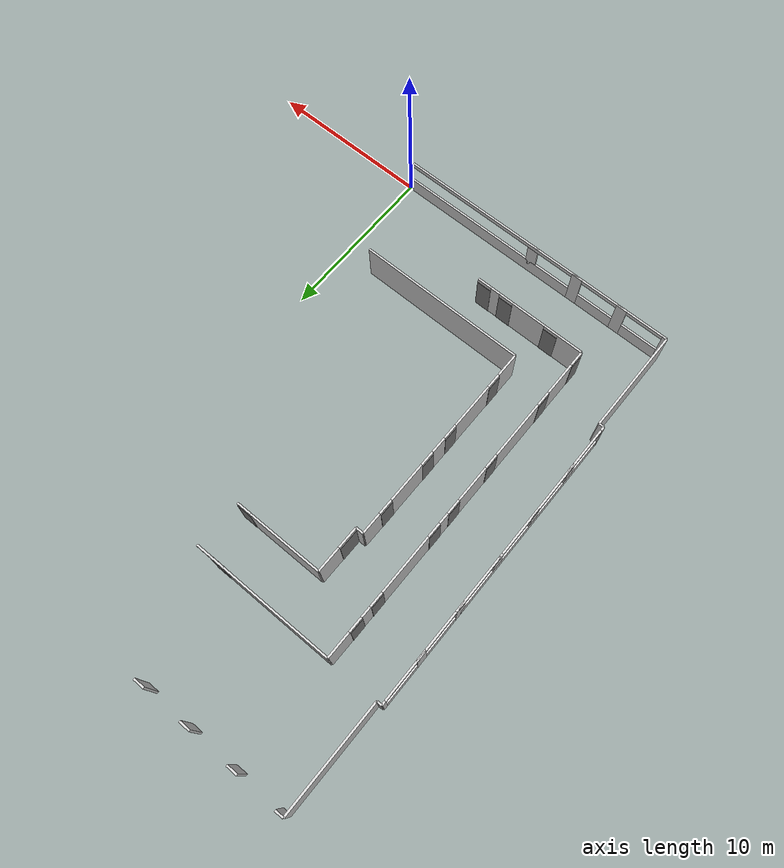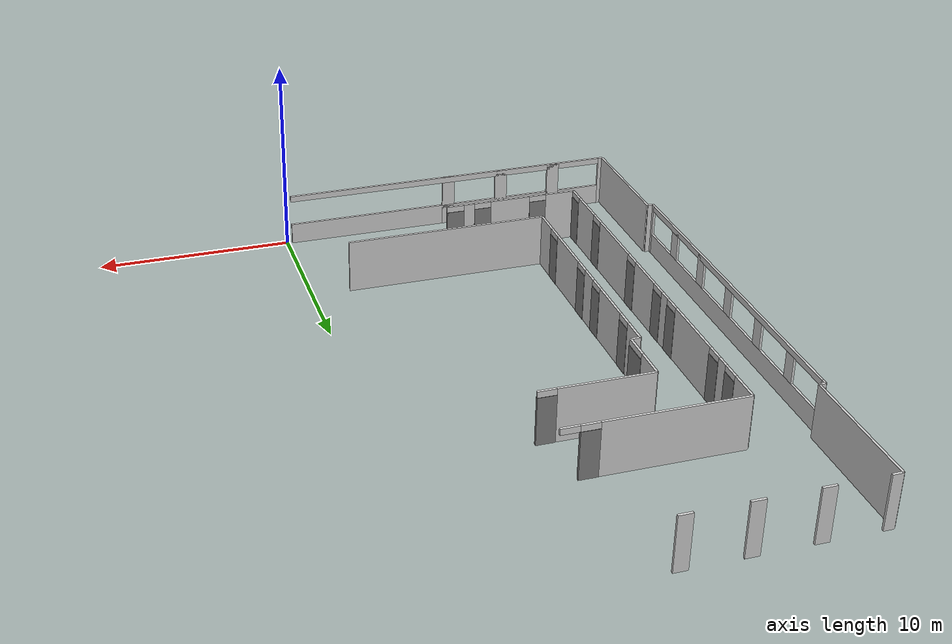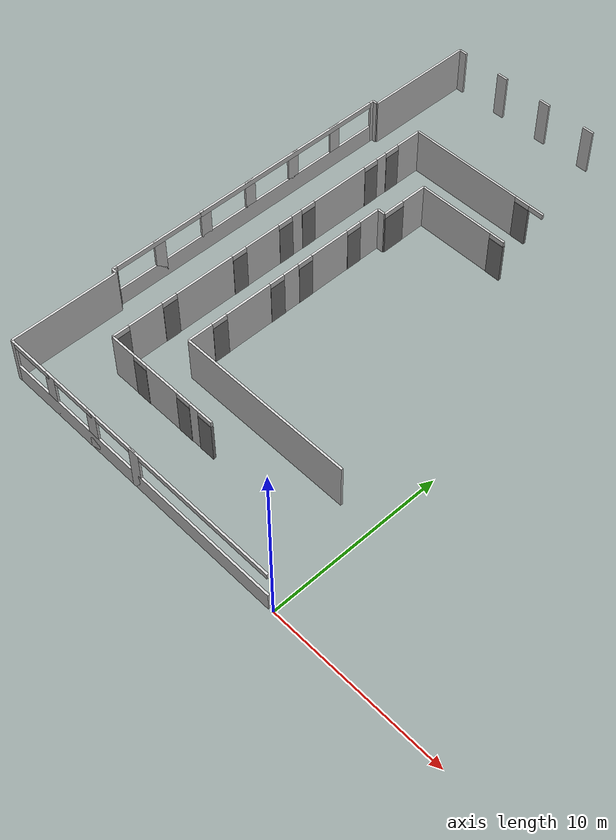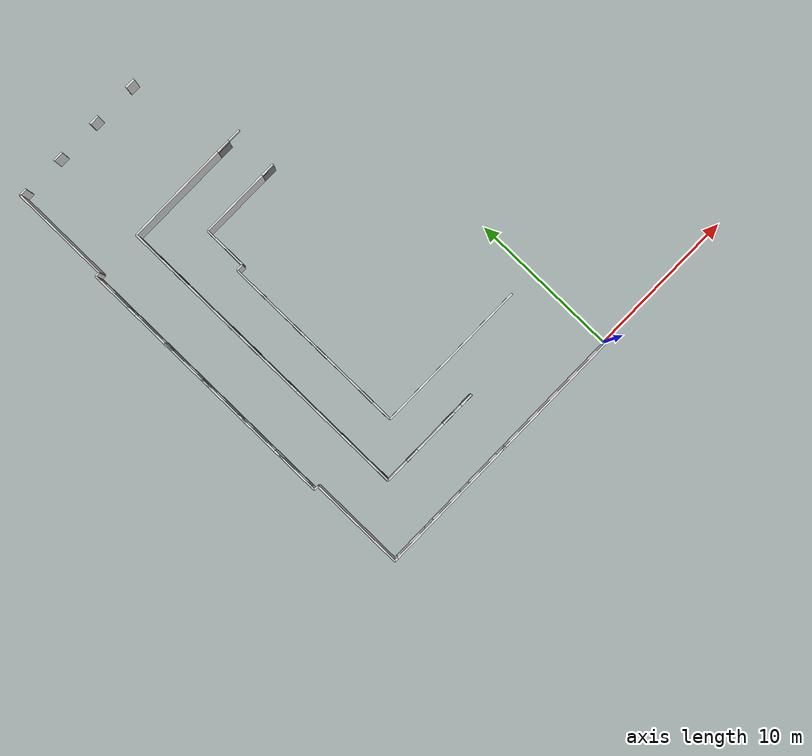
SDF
<sdf version="1.10">
 <model name="fourth_floor">
  <static>true</static>
  <link name="exteriors_002_windows_block_lower_strip">
   <pose>-9.0583 0.0000 0.5461 0 0 3.141593</pose>
   <collision name="exteriors_002_windows_block_lower_strip_collision">
    <geometry><box><size>17.6086 0.1199 1.0922</size></box></geometry>
   </collision>
   <visual name="exteriors_002_windows_block_lower_strip_visual">
    <geometry><box><size>17.6086 0.1199 1.0922</size></box></geometry>
    <material><ambient>0.82 0.82 0.82 1</ambient><diffuse>0.82 0.82 0.82 1</diffuse></material>
   </visual>
  </link>
  <link name="exteriors_002_windows_block_upper_strip">
   <pose>-9.0583 0.0000 2.5942 0 0 3.141593</pose>
   <collision name="exteriors_002_windows_block_upper_strip_collision">
    <geometry><box><size>17.6086 0.1199 0.3117</size></box></geometry>
   </collision>
   <visual name="exteriors_002_windows_block_upper_strip_visual">
    <geometry><box><size>17.6086 0.1199 0.3117</size></box></geometry>
    <material><ambient>0.82 0.82 0.82 1</ambient><diffuse>0.82 0.82 0.82 1</diffuse></material>
   </visual>
  </link>
  <link name="exteriors_002_windows_block_post_3">
   <pose>-9.0583 0.0000 1.3750 0 0 3.141593</pose>
   <collision name="exteriors_002_windows_block_post_3_collision">
    <geometry><box><size>0.6794 0.1199 2.7501</size></box></geometry>
   </collision>
   <visual name="exteriors_002_windows_block_post_3_visual">
    <geometry><box><size>0.6794 0.1199 2.7501</size></box></geometry>
    <material><ambient>0.82 0.82 0.82 1</ambient><diffuse>0.82 0.82 0.82 1</diffuse></material>
   </visual>
  </link>
  <link name="exteriors_002_windows_block_post_4">
   <pose>-12.1063 0.0000 1.3750 0 0 3.141593</pose>
   <collision name="exteriors_002_windows_block_post_4_collision">
    <geometry><box><size>0.6794 0.1199 2.7501</size></box></geometry>
   </collision>
   <visual name="exteriors_002_windows_block_post_4_visual">
    <geometry><box><size>0.6794 0.1199 2.7501</size></box></geometry>
    <material><ambient>0.82 0.82 0.82 1</ambient><diffuse>0.82 0.82 0.82 1</diffuse></material>
   </visual>
  </link>
  <link name="exteriors_002_windows_block_post_5">
   <pose>-15.1543 0.0000 1.3750 0 0 3.141593</pose>
   <collision name="exteriors_002_windows_block_post_5_collision">
    <geometry><box><size>0.6794 0.1199 2.7501</size></box></geometry>
   </collision>
   <visual name="exteriors_002_windows_block_post_5_visual">
    <geometry><box><size>0.6794 0.1199 2.7501</size></box></geometry>
    <material><ambient>0.82 0.82 0.82 1</ambient><diffuse>0.82 0.82 0.82 1</diffuse></material>
   </visual>
  </link>
  <link name="exteriors_003_solid">
   <pose>-17.9895 0.0000 1.3750 0 0 3.141593</pose>
   <collision name="exteriors_003_solid_collision">
    <geometry><box><size>0.2540 0.1199 2.7501</size></box></geometry>
   </collision>
   <visual name="exteriors_003_solid_visual">
    <geometry><box><size>0.2540 0.1199 2.7501</size></box></geometry>
    <material><ambient>0.82 0.82 0.82 1</ambient><diffuse>0.82 0.82 0.82 1</diffuse></material>
   </visual>
  </link>
  <link name="exteriors_005_solid">
   <pose>-18.1166 3.1623 1.3750 0 0 1.570796</pose>
   <collision name="exteriors_005_solid_collision">
    <geometry><box><size>6.3246 0.1199 2.7501</size></box></geometry>
   </collision>
   <visual name="exteriors_005_solid_visual">
    <geometry><box><size>6.3246 0.1199 2.7501</size></box></geometry>
    <material><ambient>0.82 0.82 0.82 1</ambient><diffuse>0.82 0.82 0.82 1</diffuse></material>
   </visual>
  </link>
  <link name="exteriors_007_solid">
   <pose>-18.2690 6.3246 1.3750 0 0 3.141593</pose>
   <collision name="exteriors_007_solid_collision">
    <geometry><box><size>0.3048 0.1199 2.7501</size></box></geometry>
   </collision>
   <visual name="exteriors_007_solid_visual">
    <geometry><box><size>0.3048 0.1199 2.7501</size></box></geometry>
    <material><ambient>0.82 0.82 0.82 1</ambient><diffuse>0.82 0.82 0.82 1</diffuse></material>
   </visual>
  </link>
  <link name="exteriors_009_solid">
   <pose>-18.4214 6.4516 1.3750 0 0 1.570796</pose>
   <collision name="exteriors_009_solid_collision">
    <geometry><box><size>0.2540 0.1199 2.7501</size></box></geometry>
   </collision>
   <visual name="exteriors_009_solid_visual">
    <geometry><box><size>0.2540 0.1199 2.7501</size></box></geometry>
    <material><ambient>0.82 0.82 0.82 1</ambient><diffuse>0.82 0.82 0.82 1</diffuse></material>
   </visual>
  </link>
  <link name="exteriors_010_windows_block_lower_strip">
   <pose>-18.4214 15.3829 0.5461 0 0 1.570796</pose>
   <collision name="exteriors_010_windows_block_lower_strip_collision">
    <geometry><box><size>17.6086 0.1199 1.0922</size></box></geometry>
   </collision>
   <visual name="exteriors_010_windows_block_lower_strip_visual">
    <geometry><box><size>17.6086 0.1199 1.0922</size></box></geometry>
    <material><ambient>0.82 0.82 0.82 1</ambient><diffuse>0.82 0.82 0.82 1</diffuse></material>
   </visual>
  </link>
  <link name="exteriors_010_windows_block_upper_strip">
   <pose>-18.4214 15.3829 2.5942 0 0 1.570796</pose>
   <collision name="exteriors_010_windows_block_upper_strip_collision">
    <geometry><box><size>17.6086 0.1199 0.3117</size></box></geometry>
   </collision>
   <visual name="exteriors_010_windows_block_upper_strip_visual">
    <geometry><box><size>17.6086 0.1199 0.3117</size></box></geometry>
    <material><ambient>0.82 0.82 0.82 1</ambient><diffuse>0.82 0.82 0.82 1</diffuse></material>
   </visual>
  </link>
  <link name="exteriors_010_windows_block_post_1">
   <pose>-18.4214 9.2869 1.3750 0 0 1.570796</pose>
   <collision name="exteriors_010_windows_block_post_1_collision">
    <geometry><box><size>0.6794 0.1199 2.7501</size></box></geometry>
   </collision>
   <visual name="exteriors_010_windows_block_post_1_visual">
    <geometry><box><size>0.6794 0.1199 2.7501</size></box></geometry>
    <material><ambient>0.82 0.82 0.82 1</ambient><diffuse>0.82 0.82 0.82 1</diffuse></material>
   </visual>
  </link>
  <link name="exteriors_010_windows_block_post_2">
   <pose>-18.4214 12.3349 1.3750 0 0 1.570796</pose>
   <collision name="exteriors_010_windows_block_post_2_collision">
    <geometry><box><size>0.6794 0.1199 2.7501</size></box></geometry>
   </collision>
   <visual name="exteriors_010_windows_block_post_2_visual">
    <geometry><box><size>0.6794 0.1199 2.7501</size></box></geometry>
    <material><ambient>0.82 0.82 0.82 1</ambient><diffuse>0.82 0.82 0.82 1</diffuse></material>
   </visual>
  </link>
  <link name="exteriors_010_windows_block_post_3">
   <pose>-18.4214 15.3829 1.3750 0 0 1.570796</pose>
   <collision name="exteriors_010_windows_block_post_3_collision">
    <geometry><box><size>0.6794 0.1199 2.7501</size></box></geometry>
   </collision>
   <visual name="exteriors_010_windows_block_post_3_visual">
    <geometry><box><size>0.6794 0.1199 2.7501</size></box></geometry>
    <material><ambient>0.82 0.82 0.82 1</ambient><diffuse>0.82 0.82 0.82 1</diffuse></material>
   </visual>
  </link>
  <link name="exteriors_010_windows_block_post_4">
   <pose>-18.4214 18.4309 1.3750 0 0 1.570796</pose>
   <collision name="exteriors_010_windows_block_post_4_collision">
    <geometry><box><size>0.6794 0.1199 2.7501</size></box></geometry>
   </collision>
   <visual name="exteriors_010_windows_block_post_4_visual">
    <geometry><box><size>0.6794 0.1199 2.7501</size></box></geometry>
    <material><ambient>0.82 0.82 0.82 1</ambient><diffuse>0.82 0.82 0.82 1</diffuse></material>
   </visual>
  </link>
  <link name="exteriors_010_windows_block_post_5">
   <pose>-18.4214 21.4789 1.3750 0 0 1.570796</pose>
   <collision name="exteriors_010_windows_block_post_5_collision">
    <geometry><box><size>0.6794 0.1199 2.7501</size></box></geometry>
   </collision>
   <visual name="exteriors_010_windows_block_post_5_visual">
    <geometry><box><size>0.6794 0.1199 2.7501</size></box></geometry>
    <material><ambient>0.82 0.82 0.82 1</ambient><diffuse>0.82 0.82 0.82 1</diffuse></material>
   </visual>
  </link>
  <link name="exteriors_011_solid">
   <pose>-18.4214 24.3142 1.3750 0 0 1.570796</pose>
   <collision name="exteriors_011_solid_collision">
    <geometry><box><size>0.2540 0.1199 2.7501</size></box></geometry>
   </collision>
   <visual name="exteriors_011_solid_visual">
    <geometry><box><size>0.2540 0.1199 2.7501</size></box></geometry>
    <material><ambient>0.82 0.82 0.82 1</ambient><diffuse>0.82 0.82 0.82 1</diffuse></material>
   </visual>
  </link>
  <link name="exteriors_013_solid">
   <pose>-18.2690 24.4412 1.3750 0 0 0.000000</pose>
   <collision name="exteriors_013_solid_collision">
    <geometry><box><size>0.3048 0.1199 2.7501</size></box></geometry>
   </collision>
   <visual name="exteriors_013_solid_visual">
    <geometry><box><size>0.3048 0.1199 2.7501</size></box></geometry>
    <material><ambient>0.82 0.82 0.82 1</ambient><diffuse>0.82 0.82 0.82 1</diffuse></material>
   </visual>
  </link>
  <link name="exteriors_015_solid">
   <pose>-18.1166 27.7431 1.3750 0 0 1.570796</pose>
   <collision name="exteriors_015_solid_collision">
    <geometry><box><size>6.6040 0.1199 2.7501</size></box></geometry>
   </collision>
   <visual name="exteriors_015_solid_visual">
    <geometry><box><size>6.6040 0.1199 2.7501</size></box></geometry>
    <material><ambient>0.82 0.82 0.82 1</ambient><diffuse>0.82 0.82 0.82 1</diffuse></material>
   </visual>
  </link>
  <link name="exteriors_017_solid">
   <pose>-17.8625 31.0451 1.3750 0 0 0.000000</pose>
   <collision name="exteriors_017_solid_collision">
    <geometry><box><size>0.5080 0.1199 2.7501</size></box></geometry>
   </collision>
   <visual name="exteriors_017_solid_visual">
    <geometry><box><size>0.5080 0.1199 2.7501</size></box></geometry>
    <material><ambient>0.82 0.82 0.82 1</ambient><diffuse>0.82 0.82 0.82 1</diffuse></material>
   </visual>
  </link>
  <link name="exteriors_018_windows_block_post_1">
   <pose>-14.9003 31.0451 1.3750 0 0 0.000000</pose>
   <collision name="exteriors_018_windows_block_post_1_collision">
    <geometry><box><size>0.6794 0.1199 2.7501</size></box></geometry>
   </collision>
   <visual name="exteriors_018_windows_block_post_1_visual">
    <geometry><box><size>0.6794 0.1199 2.7501</size></box></geometry>
    <material><ambient>0.82 0.82 0.82 1</ambient><diffuse>0.82 0.82 0.82 1</diffuse></material>
   </visual>
  </link>
  <link name="exteriors_018_windows_block_post_2">
   <pose>-11.8523 31.0451 1.3750 0 0 0.000000</pose>
   <collision name="exteriors_018_windows_block_post_2_collision">
    <geometry><box><size>0.6794 0.1199 2.7501</size></box></geometry>
   </collision>
   <visual name="exteriors_018_windows_block_post_2_visual">
    <geometry><box><size>0.6794 0.1199 2.7501</size></box></geometry>
    <material><ambient>0.82 0.82 0.82 1</ambient><diffuse>0.82 0.82 0.82 1</diffuse></material>
   </visual>
  </link>
  <link name="exteriors_018_windows_block_post_3">
   <pose>-8.8043 31.0451 1.3750 0 0 0.000000</pose>
   <collision name="exteriors_018_windows_block_post_3_collision">
    <geometry><box><size>0.6794 0.1199 2.7501</size></box></geometry>
   </collision>
   <visual name="exteriors_018_windows_block_post_3_visual">
    <geometry><box><size>0.6794 0.1199 2.7501</size></box></geometry>
    <material><ambient>0.82 0.82 0.82 1</ambient><diffuse>0.82 0.82 0.82 1</diffuse></material>
   </visual>
  </link>
  <link name="hallways_006_door_lintel">
   <pose>-8.3566 3.5814 2.5942 0 0 3.141593</pose>
   <collision name="hallways_006_door_lintel_collision">
    <geometry><box><size>0.9144 0.1199 0.3117</size></box></geometry>
   </collision>
   <visual name="hallways_006_door_lintel_visual">
    <geometry><box><size>0.9144 0.1199 0.3117</size></box></geometry>
    <material><ambient>0.82 0.82 0.82 1</ambient><diffuse>0.82 0.82 0.82 1</diffuse></material>
   </visual>
  </link>
  <link name="hallways_007_solid">
   <pose>-9.1059 3.5814 1.3750 0 0 3.141593</pose>
   <collision name="hallways_007_solid_collision">
    <geometry><box><size>0.5842 0.1199 2.7501</size></box></geometry>
   </collision>
   <visual name="hallways_007_solid_visual">
    <geometry><box><size>0.5842 0.1199 2.7501</size></box></geometry>
    <material><ambient>0.82 0.82 0.82 1</ambient><diffuse>0.82 0.82 0.82 1</diffuse></material>
   </visual>
  </link>
  <link name="hallways_008_door_lintel">
   <pose>-9.8552 3.5814 2.5942 0 0 3.141593</pose>
   <collision name="hallways_008_door_lintel_collision">
    <geometry><box><size>0.9144 0.1199 0.3117</size></box></geometry>
   </collision>
   <visual name="hallways_008_door_lintel_visual">
    <geometry><box><size>0.9144 0.1199 0.3117</size></box></geometry>
    <material><ambient>0.82 0.82 0.82 1</ambient><diffuse>0.82 0.82 0.82 1</diffuse></material>
   </visual>
  </link>
  <link name="hallways_009_solid">
   <pose>-11.3982 3.5814 1.3750 0 0 3.141593</pose>
   <collision name="hallways_009_solid_collision">
    <geometry><box><size>2.1717 0.1199 2.7501</size></box></geometry>
   </collision>
   <visual name="hallways_009_solid_visual">
    <geometry><box><size>2.1717 0.1199 2.7501</size></box></geometry>
    <material><ambient>0.82 0.82 0.82 1</ambient><diffuse>0.82 0.82 0.82 1</diffuse></material>
   </visual>
  </link>
  <link name="hallways_010_door_lintel">
   <pose>-12.9413 3.5814 2.5942 0 0 3.141593</pose>
   <collision name="hallways_010_door_lintel_collision">
    <geometry><box><size>0.9144 0.1199 0.3117</size></box></geometry>
   </collision>
   <visual name="hallways_010_door_lintel_visual">
    <geometry><box><size>0.9144 0.1199 0.3117</size></box></geometry>
    <material><ambient>0.82 0.82 0.82 1</ambient><diffuse>0.82 0.82 0.82 1</diffuse></material>
   </visual>
  </link>
  <link name="hallways_011_solid">
   <pose>-14.1986 3.5814 1.3750 0 0 3.141593</pose>
   <collision name="hallways_011_solid_collision">
    <geometry><box><size>1.6002 0.1199 2.7501</size></box></geometry>
   </collision>
   <visual name="hallways_011_solid_visual">
    <geometry><box><size>1.6002 0.1199 2.7501</size></box></geometry>
    <material><ambient>0.82 0.82 0.82 1</ambient><diffuse>0.82 0.82 0.82 1</diffuse></material>
   </visual>
  </link>
  <link name="hallways_013_solid">
   <pose>-14.9987 3.6068 1.3750 0 0 1.570796</pose>
   <collision name="hallways_013_solid_collision">
    <geometry><box><size>0.0508 0.1199 2.7501</size></box></geometry>
   </collision>
   <visual name="hallways_013_solid_visual">
    <geometry><box><size>0.0508 0.1199 2.7501</size></box></geometry>
    <material><ambient>0.82 0.82 0.82 1</ambient><diffuse>0.82 0.82 0.82 1</diffuse></material>
   </visual>
  </link>
  <link name="hallways_014_door_lintel">
   <pose>-14.9987 4.0894 2.5942 0 0 1.570796</pose>
   <collision name="hallways_014_door_lintel_collision">
    <geometry><box><size>0.9144 0.1199 0.3117</size></box></geometry>
   </collision>
   <visual name="hallways_014_door_lintel_visual">
    <geometry><box><size>0.9144 0.1199 0.3117</size></box></geometry>
    <material><ambient>0.82 0.82 0.82 1</ambient><diffuse>0.82 0.82 0.82 1</diffuse></material>
   </visual>
  </link>
  <link name="hallways_015_solid">
   <pose>-14.9987 5.5753 1.3750 0 0 1.570796</pose>
   <collision name="hallways_015_solid_collision">
    <geometry><box><size>2.0574 0.1199 2.7501</size></box></geometry>
   </collision>
   <visual name="hallways_015_solid_visual">
    <geometry><box><size>2.0574 0.1199 2.7501</size></box></geometry>
    <material><ambient>0.82 0.82 0.82 1</ambient><diffuse>0.82 0.82 0.82 1</diffuse></material>
   </visual>
  </link>
  <link name="hallways_016_door_lintel">
   <pose>-14.9987 7.0612 2.5942 0 0 1.570796</pose>
   <collision name="hallways_016_door_lintel_collision">
    <geometry><box><size>0.9144 0.1199 0.3117</size></box></geometry>
   </collision>
   <visual name="hallways_016_door_lintel_visual">
    <geometry><box><size>0.9144 0.1199 0.3117</size></box></geometry>
    <material><ambient>0.82 0.82 0.82 1</ambient><diffuse>0.82 0.82 0.82 1</diffuse></material>
   </visual>
  </link>
  <link name="hallways_017_solid">
   <pose>-14.9987 9.3218 1.3750 0 0 1.570796</pose>
   <collision name="hallways_017_solid_collision">
    <geometry><box><size>3.6068 0.1199 2.7501</size></box></geometry>
   </collision>
   <visual name="hallways_017_solid_visual">
    <geometry><box><size>3.6068 0.1199 2.7501</size></box></geometry>
    <material><ambient>0.82 0.82 0.82 1</ambient><diffuse>0.82 0.82 0.82 1</diffuse></material>
   </visual>
  </link>
  <link name="hallways_018_door_lintel">
   <pose>-14.9987 11.5824 2.5942 0 0 1.570796</pose>
   <collision name="hallways_018_door_lintel_collision">
    <geometry><box><size>0.9144 0.1199 0.3117</size></box></geometry>
   </collision>
   <visual name="hallways_018_door_lintel_visual">
    <geometry><box><size>0.9144 0.1199 0.3117</size></box></geometry>
    <material><ambient>0.82 0.82 0.82 1</ambient><diffuse>0.82 0.82 0.82 1</diffuse></material>
   </visual>
  </link>
  <link name="hallways_019_solid">
   <pose>-14.9987 13.1470 1.3750 0 0 1.570796</pose>
   <collision name="hallways_019_solid_collision">
    <geometry><box><size>2.2149 0.1199 2.7501</size></box></geometry>
   </collision>
   <visual name="hallways_019_solid_visual">
    <geometry><box><size>2.2149 0.1199 2.7501</size></box></geometry>
    <material><ambient>0.82 0.82 0.82 1</ambient><diffuse>0.82 0.82 0.82 1</diffuse></material>
   </visual>
  </link>
  <link name="hallways_020_door_lintel">
   <pose>-14.9987 14.7117 2.5942 0 0 1.570796</pose>
   <collision name="hallways_020_door_lintel_collision">
    <geometry><box><size>0.9144 0.1199 0.3117</size></box></geometry>
   </collision>
   <visual name="hallways_020_door_lintel_visual">
    <geometry><box><size>0.9144 0.1199 0.3117</size></box></geometry>
    <material><ambient>0.82 0.82 0.82 1</ambient><diffuse>0.82 0.82 0.82 1</diffuse></material>
   </visual>
  </link>
  <link name="hallways_021_solid">
   <pose>-14.9987 15.4991 1.3750 0 0 1.570796</pose>
   <collision name="hallways_021_solid_collision">
    <geometry><box><size>0.6604 0.1199 2.7501</size></box></geometry>
   </collision>
   <visual name="hallways_021_solid_visual">
    <geometry><box><size>0.6604 0.1199 2.7501</size></box></geometry>
    <material><ambient>0.82 0.82 0.82 1</ambient><diffuse>0.82 0.82 0.82 1</diffuse></material>
   </visual>
  </link>
  <link name="hallways_022_door_lintel">
   <pose>-14.9987 16.2865 2.5942 0 0 1.570796</pose>
   <collision name="hallways_022_door_lintel_collision">
    <geometry><box><size>0.9144 0.1199 0.3117</size></box></geometry>
   </collision>
   <visual name="hallways_022_door_lintel_visual">
    <geometry><box><size>0.9144 0.1199 0.3117</size></box></geometry>
    <material><ambient>0.82 0.82 0.82 1</ambient><diffuse>0.82 0.82 0.82 1</diffuse></material>
   </visual>
  </link>
  <link name="hallways_023_solid">
   <pose>-14.9987 18.5471 1.3750 0 0 1.570796</pose>
   <collision name="hallways_023_solid_collision">
    <geometry><box><size>3.6068 0.1199 2.7501</size></box></geometry>
   </collision>
   <visual name="hallways_023_solid_visual">
    <geometry><box><size>3.6068 0.1199 2.7501</size></box></geometry>
    <material><ambient>0.82 0.82 0.82 1</ambient><diffuse>0.82 0.82 0.82 1</diffuse></material>
   </visual>
  </link>
  <link name="hallways_024_door_lintel">
   <pose>-14.9987 20.8077 2.5942 0 0 1.570796</pose>
   <collision name="hallways_024_door_lintel_collision">
    <geometry><box><size>0.9144 0.1199 0.3117</size></box></geometry>
   </collision>
   <visual name="hallways_024_door_lintel_visual">
    <geometry><box><size>0.9144 0.1199 0.3117</size></box></geometry>
    <material><ambient>0.82 0.82 0.82 1</ambient><diffuse>0.82 0.82 0.82 1</diffuse></material>
   </visual>
  </link>
  <link name="hallways_025_solid">
   <pose>-14.9987 21.5951 1.3750 0 0 1.570796</pose>
   <collision name="hallways_025_solid_collision">
    <geometry><box><size>0.6604 0.1199 2.7501</size></box></geometry>
   </collision>
   <visual name="hallways_025_solid_visual">
    <geometry><box><size>0.6604 0.1199 2.7501</size></box></geometry>
    <material><ambient>0.82 0.82 0.82 1</ambient><diffuse>0.82 0.82 0.82 1</diffuse></material>
   </visual>
  </link>
  <link name="hallways_026_door_lintel">
   <pose>-14.9987 22.3825 2.5942 0 0 1.570796</pose>
   <collision name="hallways_026_door_lintel_collision">
    <geometry><box><size>0.9144 0.1199 0.3117</size></box></geometry>
   </collision>
   <visual name="hallways_026_door_lintel_visual">
    <geometry><box><size>0.9144 0.1199 0.3117</size></box></geometry>
    <material><ambient>0.82 0.82 0.82 1</ambient><diffuse>0.82 0.82 0.82 1</diffuse></material>
   </visual>
  </link>
  <link name="hallways_027_solid">
   <pose>-14.9987 23.6398 1.3750 0 0 1.570796</pose>
   <collision name="hallways_027_solid_collision">
    <geometry><box><size>1.6002 0.1199 2.7501</size></box></geometry>
   </collision>
   <visual name="hallways_027_solid_visual">
    <geometry><box><size>1.6002 0.1199 2.7501</size></box></geometry>
    <material><ambient>0.82 0.82 0.82 1</ambient><diffuse>0.82 0.82 0.82 1</diffuse></material>
   </visual>
  </link>
  <link name="hallways_029_solid">
   <pose>-11.5443 24.4399 1.3750 0 0 0.000000</pose>
   <collision name="hallways_029_solid_collision">
    <geometry><box><size>6.9088 0.1199 2.7501</size></box></geometry>
   </collision>
   <visual name="hallways_029_solid_visual">
    <geometry><box><size>6.9088 0.1199 2.7501</size></box></geometry>
    <material><ambient>0.82 0.82 0.82 1</ambient><diffuse>0.82 0.82 0.82 1</diffuse></material>
   </visual>
  </link>
  <link name="hallways_030_door_lintel">
   <pose>-7.6327 24.4399 2.5942 0 0 0.000000</pose>
   <collision name="hallways_030_door_lintel_collision">
    <geometry><box><size>0.9144 0.1199 0.3117</size></box></geometry>
   </collision>
   <visual name="hallways_030_door_lintel_visual">
    <geometry><box><size>0.9144 0.1199 0.3117</size></box></geometry>
    <material><ambient>0.82 0.82 0.82 1</ambient><diffuse>0.82 0.82 0.82 1</diffuse></material>
   </visual>
  </link>
  <link name="hallways_031_door_lintel">
   <pose>-6.7183 24.4399 2.5942 0 0 0.000000</pose>
   <collision name="hallways_031_door_lintel_collision">
    <geometry><box><size>0.9144 0.1199 0.3117</size></box></geometry>
   </collision>
   <visual name="hallways_031_door_lintel_visual">
    <geometry><box><size>0.9144 0.1199 0.3117</size></box></geometry>
    <material><ambient>0.82 0.82 0.82 1</ambient><diffuse>0.82 0.82 0.82 1</diffuse></material>
   </visual>
  </link>
  <link name="inner_walls_2_001_solid">
   <pose>-7.1450 6.0198 1.3750 0 0 3.141593</pose>
   <collision name="inner_walls_2_001_solid_collision">
    <geometry><box><size>10.3632 0.1199 2.7501</size></box></geometry>
   </collision>
   <visual name="inner_walls_2_001_solid_visual">
    <geometry><box><size>10.3632 0.1199 2.7501</size></box></geometry>
    <material><ambient>0.82 0.82 0.82 1</ambient><diffuse>0.82 0.82 0.82 1</diffuse></material>
   </visual>
  </link>
  <link name="inner_walls_2_003_solid">
   <pose>-12.3266 6.7437 1.3750 0 0 1.570796</pose>
   <collision name="inner_walls_2_003_solid_collision">
    <geometry><box><size>1.4478 0.1199 2.7501</size></box></geometry>
   </collision>
   <visual name="inner_walls_2_003_solid_visual">
    <geometry><box><size>1.4478 0.1199 2.7501</size></box></geometry>
    <material><ambient>0.82 0.82 0.82 1</ambient><diffuse>0.82 0.82 0.82 1</diffuse></material>
   </visual>
  </link>
  <link name="inner_walls_2_004_door_lintel">
   <pose>-12.3266 7.9248 2.5942 0 0 1.570796</pose>
   <collision name="inner_walls_2_004_door_lintel_collision">
    <geometry><box><size>0.9144 0.1199 0.3117</size></box></geometry>
   </collision>
   <visual name="inner_walls_2_004_door_lintel_visual">
    <geometry><box><size>0.9144 0.1199 0.3117</size></box></geometry>
    <material><ambient>0.82 0.82 0.82 1</ambient><diffuse>0.82 0.82 0.82 1</diffuse></material>
   </visual>
  </link>
  <link name="inner_walls_2_005_solid">
   <pose>-12.3266 9.7917 1.3750 0 0 1.570796</pose>
   <collision name="inner_walls_2_005_solid_collision">
    <geometry><box><size>2.8194 0.1199 2.7501</size></box></geometry>
   </collision>
   <visual name="inner_walls_2_005_solid_visual">
    <geometry><box><size>2.8194 0.1199 2.7501</size></box></geometry>
    <material><ambient>0.82 0.82 0.82 1</ambient><diffuse>0.82 0.82 0.82 1</diffuse></material>
   </visual>
  </link>
  <link name="inner_walls_2_006_door_lintel">
   <pose>-12.3266 11.6586 2.5942 0 0 1.570796</pose>
   <collision name="inner_walls_2_006_door_lintel_collision">
    <geometry><box><size>0.9144 0.1199 0.3117</size></box></geometry>
   </collision>
   <visual name="inner_walls_2_006_door_lintel_visual">
    <geometry><box><size>0.9144 0.1199 0.3117</size></box></geometry>
    <material><ambient>0.82 0.82 0.82 1</ambient><diffuse>0.82 0.82 0.82 1</diffuse></material>
   </visual>
  </link>
  <link name="inner_walls_2_007_solid">
   <pose>-12.3266 12.6111 1.3750 0 0 1.570796</pose>
   <collision name="inner_walls_2_007_solid_collision">
    <geometry><box><size>0.9906 0.1199 2.7501</size></box></geometry>
   </collision>
   <visual name="inner_walls_2_007_solid_visual">
    <geometry><box><size>0.9906 0.1199 2.7501</size></box></geometry>
    <material><ambient>0.82 0.82 0.82 1</ambient><diffuse>0.82 0.82 0.82 1</diffuse></material>
   </visual>
  </link>
  <link name="inner_walls_2_008_door_lintel">
   <pose>-12.3266 13.5636 2.5942 0 0 1.570796</pose>
   <collision name="inner_walls_2_008_door_lintel_collision">
    <geometry><box><size>0.9144 0.1199 0.3117</size></box></geometry>
   </collision>
   <visual name="inner_walls_2_008_door_lintel_visual">
    <geometry><box><size>0.9144 0.1199 0.3117</size></box></geometry>
    <material><ambient>0.82 0.82 0.82 1</ambient><diffuse>0.82 0.82 0.82 1</diffuse></material>
   </visual>
  </link>
  <link name="inner_walls_2_009_solid">
   <pose>-12.3266 15.2400 1.3750 0 0 1.570796</pose>
   <collision name="inner_walls_2_009_solid_collision">
    <geometry><box><size>2.4384 0.1199 2.7501</size></box></geometry>
   </collision>
   <visual name="inner_walls_2_009_solid_visual">
    <geometry><box><size>2.4384 0.1199 2.7501</size></box></geometry>
    <material><ambient>0.82 0.82 0.82 1</ambient><diffuse>0.82 0.82 0.82 1</diffuse></material>
   </visual>
  </link>
  <link name="inner_walls_2_010_door_lintel">
   <pose>-12.3266 16.9164 2.5942 0 0 1.570796</pose>
   <collision name="inner_walls_2_010_door_lintel_collision">
    <geometry><box><size>0.9144 0.1199 0.3117</size></box></geometry>
   </collision>
   <visual name="inner_walls_2_010_door_lintel_visual">
    <geometry><box><size>0.9144 0.1199 0.3117</size></box></geometry>
    <material><ambient>0.82 0.82 0.82 1</ambient><diffuse>0.82 0.82 0.82 1</diffuse></material>
   </visual>
  </link>
  <link name="inner_walls_2_011_solid">
   <pose>-12.3266 18.0340 1.3750 0 0 1.570796</pose>
   <collision name="inner_walls_2_011_solid_collision">
    <geometry><box><size>1.3208 0.1199 2.7501</size></box></geometry>
   </collision>
   <visual name="inner_walls_2_011_solid_visual">
    <geometry><box><size>1.3208 0.1199 2.7501</size></box></geometry>
    <material><ambient>0.82 0.82 0.82 1</ambient><diffuse>0.82 0.82 0.82 1</diffuse></material>
   </visual>
  </link>
  <link name="inner_walls_2_013_solid">
   <pose>-12.0980 18.6944 1.3750 0 0 0.000000</pose>
   <collision name="inner_walls_2_013_solid_collision">
    <geometry><box><size>0.4572 0.1199 2.7501</size></box></geometry>
   </collision>
   <visual name="inner_walls_2_013_solid_visual">
    <geometry><box><size>0.4572 0.1199 2.7501</size></box></geometry>
    <material><ambient>0.82 0.82 0.82 1</ambient><diffuse>0.82 0.82 0.82 1</diffuse></material>
   </visual>
  </link>
  <link name="inner_walls_2_015_door_lintel">
   <pose>-11.8694 19.3548 2.5942 0 0 1.570796</pose>
   <collision name="inner_walls_2_015_door_lintel_collision">
    <geometry><box><size>1.3208 0.1199 0.3117</size></box></geometry>
   </collision>
   <visual name="inner_walls_2_015_door_lintel_visual">
    <geometry><box><size>1.3208 0.1199 0.3117</size></box></geometry>
    <material><ambient>0.82 0.82 0.82 1</ambient><diffuse>0.82 0.82 0.82 1</diffuse></material>
   </visual>
  </link>
  <link name="inner_walls_2_016_solid">
   <pose>-11.8694 20.7899 1.3750 0 0 1.570796</pose>
   <collision name="inner_walls_2_016_solid_collision">
    <geometry><box><size>1.5494 0.1199 2.7501</size></box></geometry>
   </collision>
   <visual name="inner_walls_2_016_solid_visual">
    <geometry><box><size>1.5494 0.1199 2.7501</size></box></geometry>
    <material><ambient>0.82 0.82 0.82 1</ambient><diffuse>0.82 0.82 0.82 1</diffuse></material>
   </visual>
  </link>
  <link name="inner_walls_2_018_solid">
   <pose>-9.5580 21.5646 1.3750 0 0 0.000000</pose>
   <collision name="inner_walls_2_018_solid_collision">
    <geometry><box><size>4.6228 0.1199 2.7501</size></box></geometry>
   </collision>
   <visual name="inner_walls_2_018_solid_visual">
    <geometry><box><size>4.6228 0.1199 2.7501</size></box></geometry>
    <material><ambient>0.82 0.82 0.82 1</ambient><diffuse>0.82 0.82 0.82 1</diffuse></material>
   </visual>
  </link>
  <link name="inner_walls_2_019_door_lintel">
   <pose>-6.7894 21.5646 2.5942 0 0 0.000000</pose>
   <collision name="inner_walls_2_019_door_lintel_collision">
    <geometry><box><size>0.9144 0.1199 0.3117</size></box></geometry>
   </collision>
   <visual name="inner_walls_2_019_door_lintel_visual">
    <geometry><box><size>0.9144 0.1199 0.3117</size></box></geometry>
    <material><ambient>0.82 0.82 0.82 1</ambient><diffuse>0.82 0.82 0.82 1</diffuse></material>
   </visual>
  </link>
  <link name="hallways_006_door_panel">
   <pose>-8.3566 3.5814 1.2192 0 0 3.141593</pose>
   <inertial>
    <mass>25.0</mass>
    <inertia><ixx>12.4355</ixx><ixy>0</ixy><ixz>0</ixz><iyy>14.1290</iyy><iyz>0</iyz><izz>1.7903</izz></inertia>
   </inertial>
   <collision name="hallways_006_door_panel_collision">
    <geometry><box><size>0.9144 0.1524 2.4384</size></box></geometry>
    <surface>
     <friction><ode><mu>0.6</mu><mu2>0.6</mu2></ode></friction>
     <contact><ode><kp>1e6</kp><kd>1.0</kd></ode></contact>
    </surface>
   </collision>
   <visual name="hallways_006_door_panel_visual">
    <geometry><box><size>0.9144 0.1524 2.4384</size></box></geometry>
    <material>
     <ambient>0.5 0.5 0.5 1.0</ambient>
     <diffuse>0.5 0.5 0.5 1.0</diffuse>
     <specular>0.2 0.2 0.2 1.0</specular>
     <emissive>0 0 0 1.0</emissive>
    </material>
   </visual>
  </link>
  <link name="hallways_008_door_panel">
   <pose>-9.8552 3.5814 1.2192 0 0 3.141593</pose>
   <inertial>
    <mass>25.0</mass>
    <inertia><ixx>12.4355</ixx><ixy>0</ixy><ixz>0</ixz><iyy>14.1290</iyy><iyz>0</iyz><izz>1.7903</izz></inertia>
   </inertial>
   <collision name="hallways_008_door_panel_collision">
    <geometry><box><size>0.9144 0.1524 2.4384</size></box></geometry>
    <surface>
     <friction><ode><mu>0.6</mu><mu2>0.6</mu2></ode></friction>
     <contact><ode><kp>1e6</kp><kd>1.0</kd></ode></contact>
    </surface>
   </collision>
   <visual name="hallways_008_door_panel_visual">
    <geometry><box><size>0.9144 0.1524 2.4384</size></box></geometry>
    <material>
     <ambient>0.5 0.5 0.5 1.0</ambient>
     <diffuse>0.5 0.5 0.5 1.0</diffuse>
     <specular>0.2 0.2 0.2 1.0</specular>
     <emissive>0 0 0 1.0</emissive>
    </material>
   </visual>
  </link>
  <link name="hallways_010_door_panel">
   <pose>-12.9413 3.5814 1.2192 0 0 3.141593</pose>
   <inertial>
    <mass>25.0</mass>
    <inertia><ixx>12.4355</ixx><ixy>0</ixy><ixz>0</ixz><iyy>14.1290</iyy><iyz>0</iyz><izz>1.7903</izz></inertia>
   </inertial>
   <collision name="hallways_010_door_panel_collision">
    <geometry><box><size>0.9144 0.1524 2.4384</size></box></geometry>
    <surface>
     <friction><ode><mu>0.6</mu><mu2>0.6</mu2></ode></friction>
     <contact><ode><kp>1e6</kp><kd>1.0</kd></ode></contact>
    </surface>
   </collision>
   <visual name="hallways_010_door_panel_visual">
    <geometry><box><size>0.9144 0.1524 2.4384</size></box></geometry>
    <material>
     <ambient>0.5 0.5 0.5 1.0</ambient>
     <diffuse>0.5 0.5 0.5 1.0</diffuse>
     <specular>0.2 0.2 0.2 1.0</specular>
     <emissive>0 0 0 1.0</emissive>
    </material>
   </visual>
  </link>
  <link name="hallways_014_door_panel">
   <pose>-14.9987 4.0894 1.2192 0 0 1.570796</pose>
   <inertial>
    <mass>25.0</mass>
    <inertia><ixx>12.4355</ixx><ixy>0</ixy><ixz>0</ixz><iyy>14.1290</iyy><iyz>0</iyz><izz>1.7903</izz></inertia>
   </inertial>
   <collision name="hallways_014_door_panel_collision">
    <geometry><box><size>0.9144 0.1524 2.4384</size></box></geometry>
    <surface>
     <friction><ode><mu>0.6</mu><mu2>0.6</mu2></ode></friction>
     <contact><ode><kp>1e6</kp><kd>1.0</kd></ode></contact>
    </surface>
   </collision>
   <visual name="hallways_014_door_panel_visual">
    <geometry><box><size>0.9144 0.1524 2.4384</size></box></geometry>
    <material>
     <ambient>0.5 0.5 0.5 1.0</ambient>
     <diffuse>0.5 0.5 0.5 1.0</diffuse>
     <specular>0.2 0.2 0.2 1.0</specular>
     <emissive>0 0 0 1.0</emissive>
    </material>
   </visual>
  </link>
  <link name="hallways_016_door_panel">
   <pose>-14.9987 7.0612 1.2192 0 0 1.570796</pose>
   <inertial>
    <mass>25.0</mass>
    <inertia><ixx>12.4355</ixx><ixy>0</ixy><ixz>0</ixz><iyy>14.1290</iyy><iyz>0</iyz><izz>1.7903</izz></inertia>
   </inertial>
   <collision name="hallways_016_door_panel_collision">
    <geometry><box><size>0.9144 0.1524 2.4384</size></box></geometry>
    <surface>
     <friction><ode><mu>0.6</mu><mu2>0.6</mu2></ode></friction>
     <contact><ode><kp>1e6</kp><kd>1.0</kd></ode></contact>
    </surface>
   </collision>
   <visual name="hallways_016_door_panel_visual">
    <geometry><box><size>0.9144 0.1524 2.4384</size></box></geometry>
    <material>
     <ambient>0.5 0.5 0.5 1.0</ambient>
     <diffuse>0.5 0.5 0.5 1.0</diffuse>
     <specular>0.2 0.2 0.2 1.0</specular>
     <emissive>0 0 0 1.0</emissive>
    </material>
   </visual>
  </link>
  <link name="hallways_018_door_panel">
   <pose>-14.9987 11.5824 1.2192 0 0 1.570796</pose>
   <inertial>
    <mass>25.0</mass>
    <inertia><ixx>12.4355</ixx><ixy>0</ixy><ixz>0</ixz><iyy>14.1290</iyy><iyz>0</iyz><izz>1.7903</izz></inertia>
   </inertial>
   <collision name="hallways_018_door_panel_collision">
    <geometry><box><size>0.9144 0.1524 2.4384</size></box></geometry>
    <surface>
     <friction><ode><mu>0.6</mu><mu2>0.6</mu2></ode></friction>
     <contact><ode><kp>1e6</kp><kd>1.0</kd></ode></contact>
    </surface>
   </collision>
   <visual name="hallways_018_door_panel_visual">
    <geometry><box><size>0.9144 0.1524 2.4384</size></box></geometry>
    <material>
     <ambient>0.5 0.5 0.5 1.0</ambient>
     <diffuse>0.5 0.5 0.5 1.0</diffuse>
     <specular>0.2 0.2 0.2 1.0</specular>
     <emissive>0 0 0 1.0</emissive>
    </material>
   </visual>
  </link>
  <link name="hallways_020_door_panel">
   <pose>-14.9987 14.7117 1.2192 0 0 1.570796</pose>
   <inertial>
    <mass>25.0</mass>
    <inertia><ixx>12.4355</ixx><ixy>0</ixy><ixz>0</ixz><iyy>14.1290</iyy><iyz>0</iyz><izz>1.7903</izz></inertia>
   </inertial>
   <collision name="hallways_020_door_panel_collision">
    <geometry><box><size>0.9144 0.1524 2.4384</size></box></geometry>
    <surface>
     <friction><ode><mu>0.6</mu><mu2>0.6</mu2></ode></friction>
     <contact><ode><kp>1e6</kp><kd>1.0</kd></ode></contact>
    </surface>
   </collision>
   <visual name="hallways_020_door_panel_visual">
    <geometry><box><size>0.9144 0.1524 2.4384</size></box></geometry>
    <material>
     <ambient>0.5 0.5 0.5 1.0</ambient>
     <diffuse>0.5 0.5 0.5 1.0</diffuse>
     <specular>0.2 0.2 0.2 1.0</specular>
     <emissive>0 0 0 1.0</emissive>
    </material>
   </visual>
  </link>
  <link name="hallways_022_door_panel">
   <pose>-14.9987 16.2865 1.2192 0 0 1.570796</pose>
   <inertial>
    <mass>25.0</mass>
    <inertia><ixx>12.4355</ixx><ixy>0</ixy><ixz>0</ixz><iyy>14.1290</iyy><iyz>0</iyz><izz>1.7903</izz></inertia>
   </inertial>
   <collision name="hallways_022_door_panel_collision">
    <geometry><box><size>0.9144 0.1524 2.4384</size></box></geometry>
    <surface>
     <friction><ode><mu>0.6</mu><mu2>0.6</mu2></ode></friction>
     <contact><ode><kp>1e6</kp><kd>1.0</kd></ode></contact>
    </surface>
   </collision>
   <visual name="hallways_022_door_panel_visual">
    <geometry><box><size>0.9144 0.1524 2.4384</size></box></geometry>
    <material>
     <ambient>0.5 0.5 0.5 1.0</ambient>
     <diffuse>0.5 0.5 0.5 1.0</diffuse>
     <specular>0.2 0.2 0.2 1.0</specular>
     <emissive>0 0 0 1.0</emissive>
    </material>
   </visual>
  </link>
  <link name="hallways_024_door_panel">
   <pose>-14.9987 20.8077 1.2192 0 0 1.570796</pose>
   <inertial>
    <mass>25.0</mass>
    <inertia><ixx>12.4355</ixx><ixy>0</ixy><ixz>0</ixz><iyy>14.1290</iyy><iyz>0</iyz><izz>1.7903</izz></inertia>
   </inertial>
   <collision name="hallways_024_door_panel_collision">
    <geometry><box><size>0.9144 0.1524 2.4384</size></box></geometry>
    <surface>
     <friction><ode><mu>0.6</mu><mu2>0.6</mu2></ode></friction>
     <contact><ode><kp>1e6</kp><kd>1.0</kd></ode></contact>
    </surface>
   </collision>
   <visual name="hallways_024_door_panel_visual">
    <geometry><box><size>0.9144 0.1524 2.4384</size></box></geometry>
    <material>
     <ambient>0.5 0.5 0.5 1.0</ambient>
     <diffuse>0.5 0.5 0.5 1.0</diffuse>
     <specular>0.2 0.2 0.2 1.0</specular>
     <emissive>0 0 0 1.0</emissive>
    </material>
   </visual>
  </link>
  <link name="hallways_026_door_panel">
   <pose>-14.9987 22.3825 1.2192 0 0 1.570796</pose>
   <inertial>
    <mass>25.0</mass>
    <inertia><ixx>12.4355</ixx><ixy>0</ixy><ixz>0</ixz><iyy>14.1290</iyy><iyz>0</iyz><izz>1.7903</izz></inertia>
   </inertial>
   <collision name="hallways_026_door_panel_collision">
    <geometry><box><size>0.9144 0.1524 2.4384</size></box></geometry>
    <surface>
     <friction><ode><mu>0.6</mu><mu2>0.6</mu2></ode></friction>
     <contact><ode><kp>1e6</kp><kd>1.0</kd></ode></contact>
    </surface>
   </collision>
   <visual name="hallways_026_door_panel_visual">
    <geometry><box><size>0.9144 0.1524 2.4384</size></box></geometry>
    <material>
     <ambient>0.5 0.5 0.5 1.0</ambient>
     <diffuse>0.5 0.5 0.5 1.0</diffuse>
     <specular>0.2 0.2 0.2 1.0</specular>
     <emissive>0 0 0 1.0</emissive>
    </material>
   </visual>
  </link>
  <link name="hallways_030_door_panel">
   <pose>-7.6327 24.4399 1.2192 0 0 0.000000</pose>
   <inertial>
    <mass>25.0</mass>
    <inertia><ixx>12.4355</ixx><ixy>0</ixy><ixz>0</ixz><iyy>14.1290</iyy><iyz>0</iyz><izz>1.7903</izz></inertia>
   </inertial>
   <collision name="hallways_030_door_panel_collision">
    <geometry><box><size>0.9144 0.1524 2.4384</size></box></geometry>
    <surface>
     <friction><ode><mu>0.6</mu><mu2>0.6</mu2></ode></friction>
     <contact><ode><kp>1e6</kp><kd>1.0</kd></ode></contact>
    </surface>
   </collision>
   <visual name="hallways_030_door_panel_visual">
    <geometry><box><size>0.9144 0.1524 2.4384</size></box></geometry>
    <material>
     <ambient>0.5 0.5 0.5 1.0</ambient>
     <diffuse>0.5 0.5 0.5 1.0</diffuse>
     <specular>0.2 0.2 0.2 1.0</specular>
     <emissive>0 0 0 1.0</emissive>
    </material>
   </visual>
  </link>
  <link name="inner_walls_2_004_door_panel">
   <pose>-12.3266 7.9248 1.2192 0 0 1.570796</pose>
   <inertial>
    <mass>25.0</mass>
    <inertia><ixx>12.4355</ixx><ixy>0</ixy><ixz>0</ixz><iyy>14.1290</iyy><iyz>0</iyz><izz>1.7903</izz></inertia>
   </inertial>
   <collision name="inner_walls_2_004_door_panel_collision">
    <geometry><box><size>0.9144 0.1524 2.4384</size></box></geometry>
    <surface>
     <friction><ode><mu>0.6</mu><mu2>0.6</mu2></ode></friction>
     <contact><ode><kp>1e6</kp><kd>1.0</kd></ode></contact>
    </surface>
   </collision>
   <visual name="inner_walls_2_004_door_panel_visual">
    <geometry><box><size>0.9144 0.1524 2.4384</size></box></geometry>
    <material>
     <ambient>0.5 0.5 0.5 1.0</ambient>
     <diffuse>0.5 0.5 0.5 1.0</diffuse>
     <specular>0.2 0.2 0.2 1.0</specular>
     <emissive>0 0 0 1.0</emissive>
    </material>
   </visual>
  </link>
  <link name="inner_walls_2_006_door_panel">
   <pose>-12.3266 11.6586 1.2192 0 0 1.570796</pose>
   <inertial>
    <mass>25.0</mass>
    <inertia><ixx>12.4355</ixx><ixy>0</ixy><ixz>0</ixz><iyy>14.1290</iyy><iyz>0</iyz><izz>1.7903</izz></inertia>
   </inertial>
   <collision name="inner_walls_2_006_door_panel_collision">
    <geometry><box><size>0.9144 0.1524 2.4384</size></box></geometry>
    <surface>
     <friction><ode><mu>0.6</mu><mu2>0.6</mu2></ode></friction>
     <contact><ode><kp>1e6</kp><kd>1.0</kd></ode></contact>
    </surface>
   </collision>
   <visual name="inner_walls_2_006_door_panel_visual">
    <geometry><box><size>0.9144 0.1524 2.4384</size></box></geometry>
    <material>
     <ambient>0.5 0.5 0.5 1.0</ambient>
     <diffuse>0.5 0.5 0.5 1.0</diffuse>
     <specular>0.2 0.2 0.2 1.0</specular>
     <emissive>0 0 0 1.0</emissive>
    </material>
   </visual>
  </link>
  <link name="inner_walls_2_008_door_panel">
   <pose>-12.3266 13.5636 1.2192 0 0 1.570796</pose>
   <inertial>
    <mass>25.0</mass>
    <inertia><ixx>12.4355</ixx><ixy>0</ixy><ixz>0</ixz><iyy>14.1290</iyy><iyz>0</iyz><izz>1.7903</izz></inertia>
   </inertial>
   <collision name="inner_walls_2_008_door_panel_collision">
    <geometry><box><size>0.9144 0.1524 2.4384</size></box></geometry>
    <surface>
     <friction><ode><mu>0.6</mu><mu2>0.6</mu2></ode></friction>
     <contact><ode><kp>1e6</kp><kd>1.0</kd></ode></contact>
    </surface>
   </collision>
   <visual name="inner_walls_2_008_door_panel_visual">
    <geometry><box><size>0.9144 0.1524 2.4384</size></box></geometry>
    <material>
     <ambient>0.5 0.5 0.5 1.0</ambient>
     <diffuse>0.5 0.5 0.5 1.0</diffuse>
     <specular>0.2 0.2 0.2 1.0</specular>
     <emissive>0 0 0 1.0</emissive>
    </material>
   </visual>
  </link>
  <link name="inner_walls_2_010_door_panel">
   <pose>-12.3266 16.9164 1.2192 0 0 1.570796</pose>
   <inertial>
    <mass>25.0</mass>
    <inertia><ixx>12.4355</ixx><ixy>0</ixy><ixz>0</ixz><iyy>14.1290</iyy><iyz>0</iyz><izz>1.7903</izz></inertia>
   </inertial>
   <collision name="inner_walls_2_010_door_panel_collision">
    <geometry><box><size>0.9144 0.1524 2.4384</size></box></geometry>
    <surface>
     <friction><ode><mu>0.6</mu><mu2>0.6</mu2></ode></friction>
     <contact><ode><kp>1e6</kp><kd>1.0</kd></ode></contact>
    </surface>
   </collision>
   <visual name="inner_walls_2_010_door_panel_visual">
    <geometry><box><size>0.9144 0.1524 2.4384</size></box></geometry>
    <material>
     <ambient>0.5 0.5 0.5 1.0</ambient>
     <diffuse>0.5 0.5 0.5 1.0</diffuse>
     <specular>0.2 0.2 0.2 1.0</specular>
     <emissive>0 0 0 1.0</emissive>
    </material>
   </visual>
  </link>
  <link name="inner_walls_2_015_door_panel">
   <pose>-11.8694 19.3548 1.2192 0 0 1.570796</pose>
   <inertial>
    <mass>25.0</mass>
    <inertia><ixx>12.4355</ixx><ixy>0</ixy><ixz>0</ixz><iyy>16.0215</iyy><iyz>0</iyz><izz>3.6828</izz></inertia>
   </inertial>
   <collision name="inner_walls_2_015_door_panel_collision">
    <geometry><box><size>1.3208 0.1524 2.4384</size></box></geometry>
    <surface>
     <friction><ode><mu>0.6</mu><mu2>0.6</mu2></ode></friction>
     <contact><ode><kp>1e6</kp><kd>1.0</kd></ode></contact>
    </surface>
   </collision>
   <visual name="inner_walls_2_015_door_panel_visual">
    <geometry><box><size>1.3208 0.1524 2.4384</size></box></geometry>
    <material>
     <ambient>0.5 0.5 0.5 1.0</ambient>
     <diffuse>0.5 0.5 0.5 1.0</diffuse>
     <specular>0.2 0.2 0.2 1.0</specular>
     <emissive>0 0 0 1.0</emissive>
    </material>
   </visual>
  </link>
  <link name="inner_walls_2_019_door_panel">
   <pose>-6.7894 21.5646 1.2192 0 0 0.000000</pose>
   <inertial>
    <mass>25.0</mass>
    <inertia><ixx>12.4355</ixx><ixy>0</ixy><ixz>0</ixz><iyy>14.1290</iyy><iyz>0</iyz><izz>1.7903</izz></inertia>
   </inertial>
   <collision name="inner_walls_2_019_door_panel_collision">
    <geometry><box><size>0.9144 0.1524 2.4384</size></box></geometry>
    <surface>
     <friction><ode><mu>0.6</mu><mu2>0.6</mu2></ode></friction>
     <contact><ode><kp>1e6</kp><kd>1.0</kd></ode></contact>
    </surface>
   </collision>
   <visual name="inner_walls_2_019_door_panel_visual">
    <geometry><box><size>0.9144 0.1524 2.4384</size></box></geometry>
    <material>
     <ambient>0.5 0.5 0.5 1.0</ambient>
     <diffuse>0.5 0.5 0.5 1.0</diffuse>
     <specular>0.2 0.2 0.2 1.0</specular>
     <emissive>0 0 0 1.0</emissive>
    </material>
   </visual>
  </link>
 </model>
</sdf>
